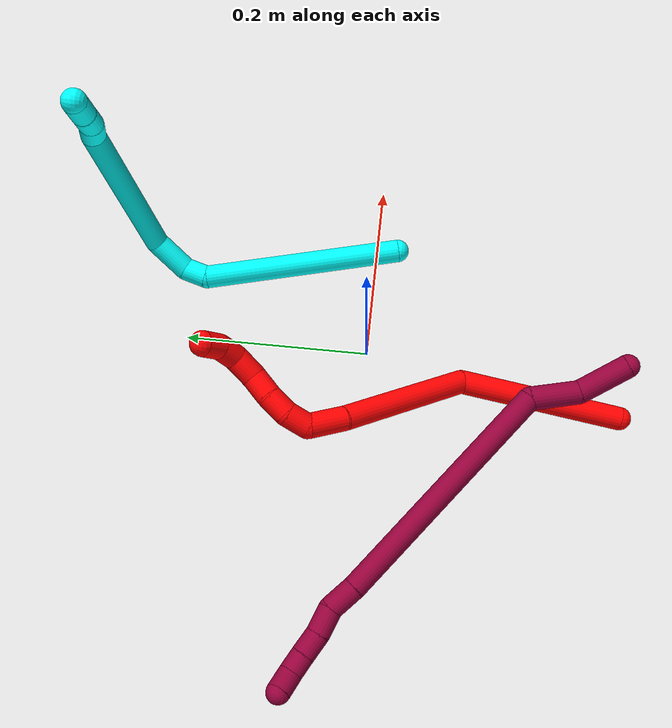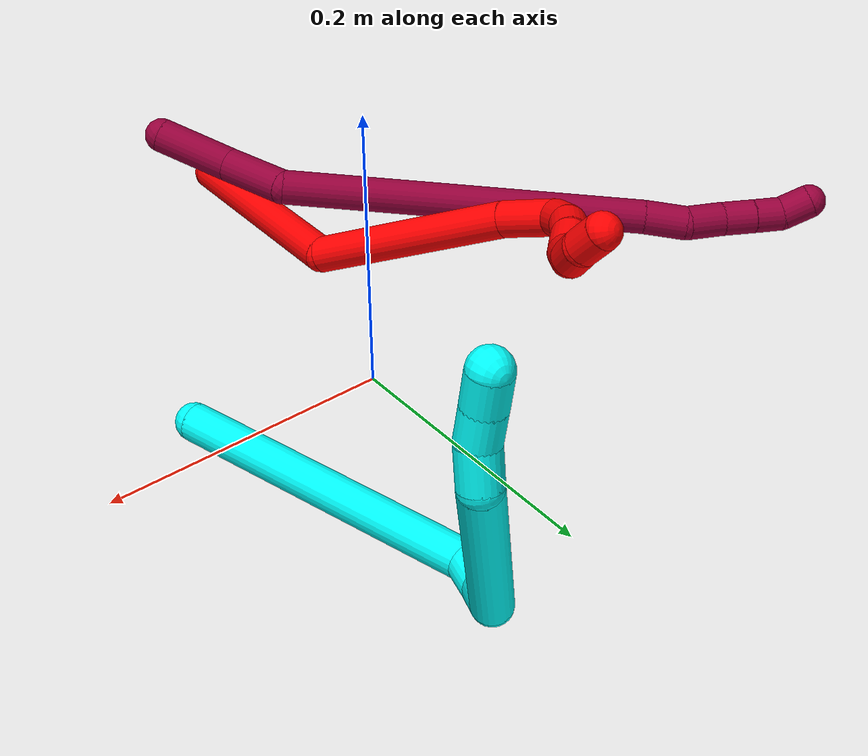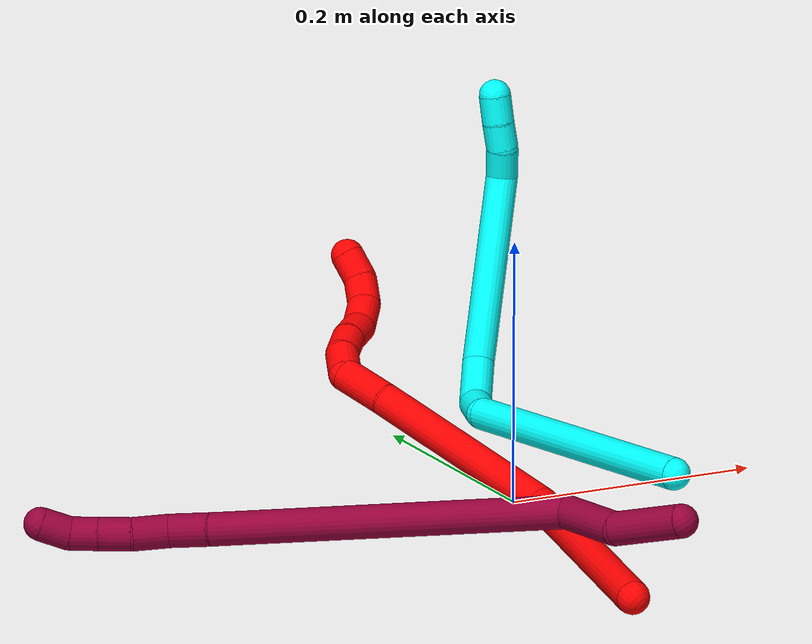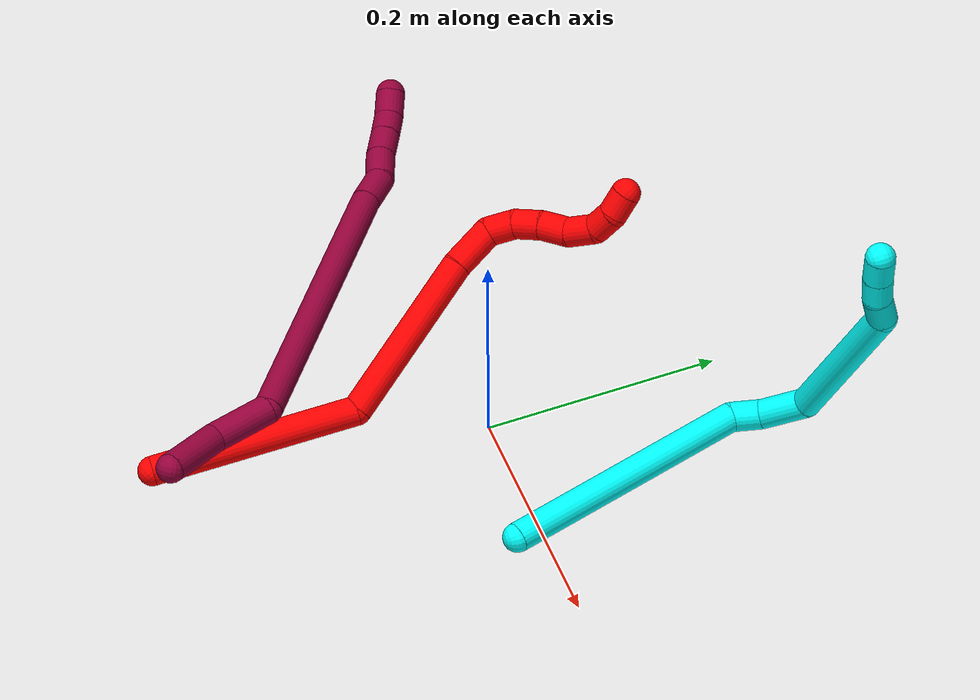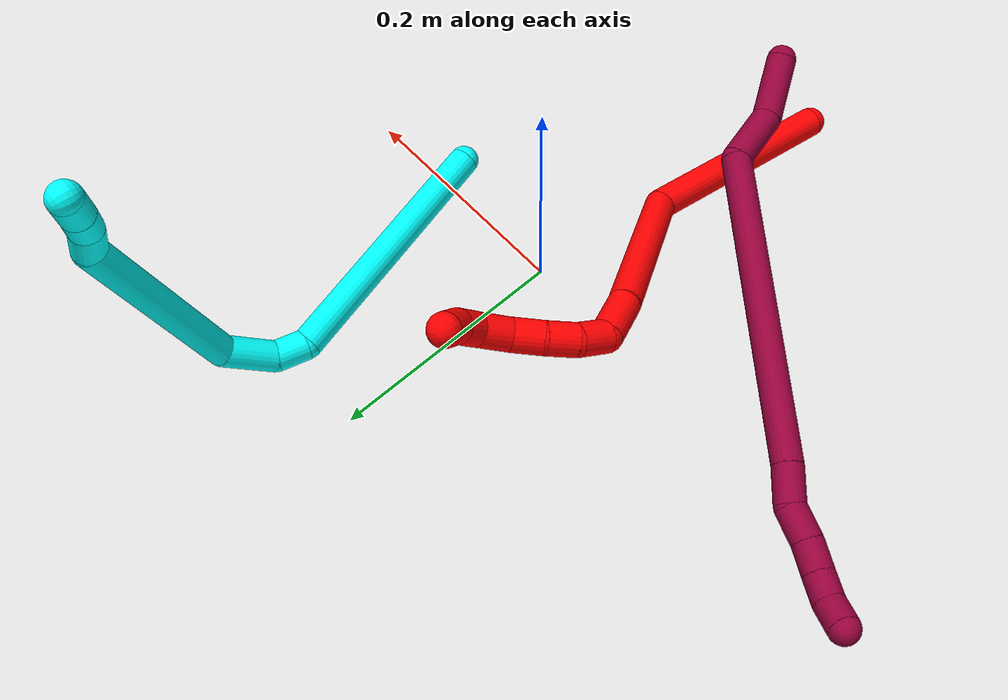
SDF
<sdf version="1.7">
 <world name="default">
  <model name="photoneo_s_sensor">
   <static>1</static>
   <pose>0 0 2 1.57079 1.57079 3.14159</pose>
   <link name="link">
    <inertial><mass>0.1</mass></inertial>
    <sensor name="sensor" type="depth">
     <update_rate>30</update_rate>
     <camera>
      <horizontal_fov>1.22</horizontal_fov>
      <image><width>1920</width><height>1200</height><format>B8G8R8</format></image>
      <clip><near>0.1</near><far>4</far></clip>
      <depth_camera><output>points</output></depth_camera>
     </camera>
     <plugin name="camera_plugin" filename="libgazebo_ros_depth_camera.so">
      <baseline>0.2</baseline>
      <alwaysOn>1</alwaysOn>
      <updateRate>0.0</updateRate>
      <cameraName>camera_ir</cameraName>
      <imageTopicName>/camera/color/image_raw</imageTopicName>
      <cameraInfoTopicName>/camera/color/camera_info</cameraInfoTopicName>
      <depthImageTopicName>/camera/depth/image_raw</depthImageTopicName>
      <depthImageCameraInfoTopicName>/camera/depth/camera_info</depthImageCameraInfoTopicName>
      <pointCloudTopicName>/camera/depth/points</pointCloudTopicName>
      <frameName>fr_optical</frameName>
      <pointCloudCutoff>0.1</pointCloudCutoff>
      <pointCloudCutoffMax>2.0</pointCloudCutoffMax>
      <distortionK1>0</distortionK1>
      <distortionK2>0</distortionK2>
      <distortionK3>0</distortionK3>
      <distortionT1>0</distortionT1>
      <distortionT2>0</distortionT2>
      <CxPrime>0</CxPrime>
      <Cx>0</Cx>
      <Cy>0</Cy>
      <focalLength>0</focalLength>
      <hackBaseline>0</hackBaseline>
     </plugin>
    </sensor>
   </link>
  </model>
  <model name="bin">
   <static>1</static>
   <link name="bottom">
    <collision name="collision-bottom">
     <pose>0 0 -0.01 0 -0 0</pose>
     <geometry><box><size>0.8 0.6 0.02</size></box></geometry>
     <surface>
      <friction><ode><mu>100</mu><mu2>100</mu2></ode></friction>
      <contact><collide_bitmask>65535</collide_bitmask></contact>
     </surface>
    </collision>
   </link>
   <link name="west_wall">
    <collision name="collision-west_wall">
     <pose>-0.41 0 0.1 0 -0 0</pose>
     <geometry><box><size>0.02 0.6 0.2</size></box></geometry>
     <surface>
      <friction><ode><mu>100</mu><mu2>100</mu2></ode></friction>
      <contact><collide_bitmask>65535</collide_bitmask></contact>
     </surface>
    </collision>
   </link>
   <link name="east_wall">
    <collision name="collision-east_wall">
     <pose>0.41 0 0.1 0 -0 0</pose>
     <geometry><box><size>0.02 0.6 0.2</size></box></geometry>
     <surface>
      <friction><ode><mu>100</mu><mu2>100</mu2></ode></friction>
      <contact><collide_bitmask>65535</collide_bitmask></contact>
     </surface>
    </collision>
   </link>
   <link name="south_wall">
    <collision name="collision-south_wall">
     <pose>0 -0.31 0.1 0 -0 0</pose>
     <geometry><box><size>0.8 0.02 0.2</size></box></geometry>
     <surface>
      <friction><ode><mu>100</mu><mu2>100</mu2></ode></friction>
      <contact><collide_bitmask>65535</collide_bitmask></contact>
     </surface>
    </collision>
   </link>
   <link name="north_wall">
    <collision name="collision-north_wall">
     <pose>0 0.31 0.1 0 -0 0</pose>
     <geometry><box><size>0.8 0.02 0.2</size></box></geometry>
     <surface>
      <friction><ode><mu>100</mu><mu2>100</mu2></ode></friction>
      <contact><collide_bitmask>65535</collide_bitmask></contact>
     </surface>
    </collision>
   </link>
  </model>
  <model name="2">
   <static>0</static>
   <link name="2">
    <collision name="collision-cylinder-e_1_1_4">
     <pose>0.028869 0.027358 0.077668 -0.338674 0.337193 -0.058188</pose>
     <geometry><cylinder><radius>0.0125</radius><length>0.174518</length></cylinder></geometry>
     <surface>
      <friction><ode><mu>1.16</mu><mu2>1.16</mu2><slip1>0</slip1><slip2>0</slip2></ode></friction>
      <contact><ode><kp>1e+06</kp><kd>1</kd><max_vel>0</max_vel><min_depth>0.001</min_depth></ode></contact>
     </surface>
    </collision>
    <visual name="visual-cylinder-e_1_1_4">
     <pose>0.028869 0.027358 0.077668 -0.338674 0.337193 -0.058188</pose>
     <geometry><cylinder><radius>0.0125</radius><length>0.174518</length></cylinder></geometry>
     <material><ambient>1 0 0 1</ambient></material>
    </visual>
    <collision name="collision-cylinder-e_2_4_5">
     <pose>0.038917 0.054653 0.226309 0.000888 -0.259213 -0.000116</pose>
     <geometry><cylinder><radius>0.0125</radius><length>0.146853</length></cylinder></geometry>
     <surface>
      <friction><ode><mu>1.16</mu><mu2>1.16</mu2><slip1>0</slip1><slip2>0</slip2></ode></friction>
      <contact><ode><kp>1e+06</kp><kd>1</kd><max_vel>0</max_vel><min_depth>0.001</min_depth></ode></contact>
     </surface>
    </collision>
    <visual name="visual-cylinder-e_2_4_5">
     <pose>0.038917 0.054653 0.226309 0.000888 -0.259213 -0.000116</pose>
     <geometry><cylinder><radius>0.0125</radius><length>0.146853</length></cylinder></geometry>
     <material><ambient>1 0 0 1</ambient></material>
    </visual>
    <collision name="collision-cylinder-e_3_5_6">
     <pose>0.017045 0.056807 0.316459 -0.115073 -0.156733 0.009046</pose>
     <geometry><cylinder><radius>0.0125</radius><length>0.03909</length></cylinder></geometry>
     <surface>
      <friction><ode><mu>1.16</mu><mu2>1.16</mu2><slip1>0</slip1><slip2>0</slip2></ode></friction>
      <contact><ode><kp>1e+06</kp><kd>1</kd><max_vel>0</max_vel><min_depth>0.001</min_depth></ode></contact>
     </surface>
    </collision>
    <visual name="visual-cylinder-e_3_5_6">
     <pose>0.017045 0.056807 0.316459 -0.115073 -0.156733 0.009046</pose>
     <geometry><cylinder><radius>0.0125</radius><length>0.03909</length></cylinder></geometry>
     <material><ambient>1 0 0 1</ambient></material>
    </visual>
    <collision name="collision-cylinder-e_4_6_7">
     <pose>0.020549 0.05922 0.345852 -0.019222 0.570369 -0.005636</pose>
     <geometry><cylinder><radius>0.0125</radius><length>0.024276</length></cylinder></geometry>
     <surface>
      <friction><ode><mu>1.16</mu><mu2>1.16</mu2><slip1>0</slip1><slip2>0</slip2></ode></friction>
      <contact><ode><kp>1e+06</kp><kd>1</kd><max_vel>0</max_vel><min_depth>0.001</min_depth></ode></contact>
     </surface>
    </collision>
    <visual name="visual-cylinder-e_4_6_7">
     <pose>0.020549 0.05922 0.345852 -0.019222 0.570369 -0.005636</pose>
     <geometry><cylinder><radius>0.0125</radius><length>0.024276</length></cylinder></geometry>
     <material><ambient>1 0 0 1</ambient></material>
    </visual>
    <collision name="collision-cylinder-e_5_7_8">
     <pose>0.036201 0.060372 0.36348 -0.12818 0.883091 -0.060651</pose>
     <geometry><cylinder><radius>0.0125</radius><length>0.023549</length></cylinder></geometry>
     <surface>
      <friction><ode><mu>1.16</mu><mu2>1.16</mu2><slip1>0</slip1><slip2>0</slip2></ode></friction>
      <contact><ode><kp>1e+06</kp><kd>1</kd><max_vel>0</max_vel><min_depth>0.001</min_depth></ode></contact>
     </surface>
    </collision>
    <visual name="visual-cylinder-e_5_7_8">
     <pose>0.036201 0.060372 0.36348 -0.12818 0.883091 -0.060651</pose>
     <geometry><cylinder><radius>0.0125</radius><length>0.023549</length></cylinder></geometry>
     <material><ambient>1 0 0 1</ambient></material>
    </visual>
    <collision name="collision-cylinder-e_6_8_9">
     <pose>0.055609 0.063396 0.376724 -0.340859 1.03025 -0.19424</pose>
     <geometry><cylinder><radius>0.0125</radius><length>0.024048</length></cylinder></geometry>
     <surface>
      <friction><ode><mu>1.16</mu><mu2>1.16</mu2><slip1>0</slip1><slip2>0</slip2></ode></friction>
      <contact><ode><kp>1e+06</kp><kd>1</kd><max_vel>0</max_vel><min_depth>0.001</min_depth></ode></contact>
     </surface>
    </collision>
    <visual name="visual-cylinder-e_6_8_9">
     <pose>0.055609 0.063396 0.376724 -0.340859 1.03025 -0.19424</pose>
     <geometry><cylinder><radius>0.0125</radius><length>0.024048</length></cylinder></geometry>
     <material><ambient>1 0 0 1</ambient></material>
    </visual>
    <collision name="collision-cylinder-e_7_9_10">
     <pose>0.075097 0.06404 0.391397 0.159668 0.797687 0.067407</pose>
     <geometry><cylinder><radius>0.0125</radius><length>0.025647</length></cylinder></geometry>
     <surface>
      <friction><ode><mu>1.16</mu><mu2>1.16</mu2><slip1>0</slip1><slip2>0</slip2></ode></friction>
      <contact><ode><kp>1e+06</kp><kd>1</kd><max_vel>0</max_vel><min_depth>0.001</min_depth></ode></contact>
     </surface>
    </collision>
    <visual name="visual-cylinder-e_7_9_10">
     <pose>0.075097 0.06404 0.391397 0.159668 0.797687 0.067407</pose>
     <geometry><cylinder><radius>0.0125</radius><length>0.025647</length></cylinder></geometry>
     <material><ambient>1 0 0 1</ambient></material>
    </visual>
    <collision name="collision-cylinder-e_8_10_11">
     <pose>0.087907 0.058165 0.409069 0.466917 0.351978 0.084523</pose>
     <geometry><cylinder><radius>0.0125</radius><length>0.02107</length></cylinder></geometry>
     <surface>
      <friction><ode><mu>1.16</mu><mu2>1.16</mu2><slip1>0</slip1><slip2>0</slip2></ode></friction>
      <contact><ode><kp>1e+06</kp><kd>1</kd><max_vel>0</max_vel><min_depth>0.001</min_depth></ode></contact>
     </surface>
    </collision>
    <visual name="visual-cylinder-e_8_10_11">
     <pose>0.087907 0.058165 0.409069 0.466917 0.351978 0.084523</pose>
     <geometry><cylinder><radius>0.0125</radius><length>0.02107</length></cylinder></geometry>
     <material><ambient>1 0 0 1</ambient></material>
    </visual>
    <collision name="collision-cylinder-e_9_11_2">
     <pose>0.09148 0.049446 0.427465 0.419617 -0.005661 -0.001206</pose>
     <geometry><cylinder><radius>0.0125</radius><length>0.020949</length></cylinder></geometry>
     <surface>
      <friction><ode><mu>1.16</mu><mu2>1.16</mu2><slip1>0</slip1><slip2>0</slip2></ode></friction>
      <contact><ode><kp>1e+06</kp><kd>1</kd><max_vel>0</max_vel><min_depth>0.001</min_depth></ode></contact>
     </surface>
    </collision>
    <visual name="visual-cylinder-e_9_11_2">
     <pose>0.09148 0.049446 0.427465 0.419617 -0.005661 -0.001206</pose>
     <geometry><cylinder><radius>0.0125</radius><length>0.020949</length></cylinder></geometry>
     <material><ambient>1 0 0 1</ambient></material>
    </visual>
    <collision name="collision-sphere-2">
     <pose>0.09142 0.045179 0.437031 0 -0 0</pose>
     <geometry><sphere><radius>0.0125</radius></sphere></geometry>
     <surface>
      <friction><ode><mu>1.16</mu><mu2>1.16</mu2><slip1>0</slip1><slip2>0</slip2></ode></friction>
      <contact><ode><kp>1e+06</kp><kd>1</kd><max_vel>0</max_vel><min_depth>0.001</min_depth></ode></contact>
     </surface>
    </collision>
    <visual name="visual-sphere-2">
     <pose>0.09142 0.045179 0.437031 0 -0 0</pose>
     <geometry><sphere><radius>0.0125</radius></sphere></geometry>
     <material><ambient>1 0 0 1</ambient></material>
    </visual>
    <collision name="collision-sphere-11">
     <pose>0.091539 0.053714 0.4179 0 -0 0</pose>
     <geometry><sphere><radius>0.0125</radius></sphere></geometry>
     <surface>
      <friction><ode><mu>1.16</mu><mu2>1.16</mu2><slip1>0</slip1><slip2>0</slip2></ode></friction>
      <contact><ode><kp>1e+06</kp><kd>1</kd><max_vel>0</max_vel><min_depth>0.001</min_depth></ode></contact>
     </surface>
    </collision>
    <visual name="visual-sphere-11">
     <pose>0.091539 0.053714 0.4179 0 -0 0</pose>
     <geometry><sphere><radius>0.0125</radius></sphere></geometry>
     <material><ambient>1 0 0 1</ambient></material>
    </visual>
    <collision name="collision-sphere-10">
     <pose>0.084275 0.062616 0.400239 0 -0 0</pose>
     <geometry><sphere><radius>0.0125</radius></sphere></geometry>
     <surface>
      <friction><ode><mu>1.16</mu><mu2>1.16</mu2><slip1>0</slip1><slip2>0</slip2></ode></friction>
      <contact><ode><kp>1e+06</kp><kd>1</kd><max_vel>0</max_vel><min_depth>0.001</min_depth></ode></contact>
     </surface>
    </collision>
    <visual name="visual-sphere-10">
     <pose>0.084275 0.062616 0.400239 0 -0 0</pose>
     <geometry><sphere><radius>0.0125</radius></sphere></geometry>
     <material><ambient>1 0 0 1</ambient></material>
    </visual>
    <collision name="collision-sphere-9">
     <pose>0.065919 0.065464 0.382556 0 -0 0</pose>
     <geometry><sphere><radius>0.0125</radius></sphere></geometry>
     <surface>
      <friction><ode><mu>1.16</mu><mu2>1.16</mu2><slip1>0</slip1><slip2>0</slip2></ode></friction>
      <contact><ode><kp>1e+06</kp><kd>1</kd><max_vel>0</max_vel><min_depth>0.001</min_depth></ode></contact>
     </surface>
    </collision>
    <visual name="visual-sphere-9">
     <pose>0.065919 0.065464 0.382556 0 -0 0</pose>
     <geometry><sphere><radius>0.0125</radius></sphere></geometry>
     <material><ambient>1 0 0 1</ambient></material>
    </visual>
    <collision name="collision-sphere-4">
     <pose>0.057737 0.054716 0.155335 0 -0 0</pose>
     <geometry><sphere><radius>0.0125</radius></sphere></geometry>
     <surface>
      <friction><ode><mu>1.16</mu><mu2>1.16</mu2><slip1>0</slip1><slip2>0</slip2></ode></friction>
      <contact><ode><kp>1e+06</kp><kd>1</kd><max_vel>0</max_vel><min_depth>0.001</min_depth></ode></contact>
     </surface>
    </collision>
    <visual name="visual-sphere-4">
     <pose>0.057737 0.054716 0.155335 0 -0 0</pose>
     <geometry><sphere><radius>0.0125</radius></sphere></geometry>
     <material><ambient>1 0 0 1</ambient></material>
    </visual>
    <collision name="collision-sphere-1">
     <geometry><sphere><radius>0.0125</radius></sphere></geometry>
     <surface>
      <friction><ode><mu>1.16</mu><mu2>1.16</mu2><slip1>0</slip1><slip2>0</slip2></ode></friction>
      <contact><ode><kp>1e+06</kp><kd>1</kd><max_vel>0</max_vel><min_depth>0.001</min_depth></ode></contact>
     </surface>
    </collision>
    <visual name="visual-sphere-1">
     <geometry><sphere><radius>0.0125</radius></sphere></geometry>
     <material><ambient>1 0 0 1</ambient></material>
    </visual>
    <collision name="collision-sphere-8">
     <pose>0.045299 0.061327 0.370892 0 -0 0</pose>
     <geometry><sphere><radius>0.0125</radius></sphere></geometry>
     <surface>
      <friction><ode><mu>1.16</mu><mu2>1.16</mu2><slip1>0</slip1><slip2>0</slip2></ode></friction>
      <contact><ode><kp>1e+06</kp><kd>1</kd><max_vel>0</max_vel><min_depth>0.001</min_depth></ode></contact>
     </surface>
    </collision>
    <visual name="visual-sphere-8">
     <pose>0.045299 0.061327 0.370892 0 -0 0</pose>
     <geometry><sphere><radius>0.0125</radius></sphere></geometry>
     <material><ambient>1 0 0 1</ambient></material>
    </visual>
    <collision name="collision-sphere-5">
     <pose>0.020096 0.05459 0.297282 0 -0 0</pose>
     <geometry><sphere><radius>0.0125</radius></sphere></geometry>
     <surface>
      <friction><ode><mu>1.16</mu><mu2>1.16</mu2><slip1>0</slip1><slip2>0</slip2></ode></friction>
      <contact><ode><kp>1e+06</kp><kd>1</kd><max_vel>0</max_vel><min_depth>0.001</min_depth></ode></contact>
     </surface>
    </collision>
    <visual name="visual-sphere-5">
     <pose>0.020096 0.05459 0.297282 0 -0 0</pose>
     <geometry><sphere><radius>0.0125</radius></sphere></geometry>
     <material><ambient>1 0 0 1</ambient></material>
    </visual>
    <collision name="collision-sphere-6">
     <pose>0.013995 0.059023 0.335637 0 -0 0</pose>
     <geometry><sphere><radius>0.0125</radius></sphere></geometry>
     <surface>
      <friction><ode><mu>1.16</mu><mu2>1.16</mu2><slip1>0</slip1><slip2>0</slip2></ode></friction>
      <contact><ode><kp>1e+06</kp><kd>1</kd><max_vel>0</max_vel><min_depth>0.001</min_depth></ode></contact>
     </surface>
    </collision>
    <visual name="visual-sphere-6">
     <pose>0.013995 0.059023 0.335637 0 -0 0</pose>
     <geometry><sphere><radius>0.0125</radius></sphere></geometry>
     <material><ambient>1 0 0 1</ambient></material>
    </visual>
    <collision name="collision-sphere-7">
     <pose>0.027102 0.059416 0.356067 0 -0 0</pose>
     <geometry><sphere><radius>0.0125</radius></sphere></geometry>
     <surface>
      <friction><ode><mu>1.16</mu><mu2>1.16</mu2><slip1>0</slip1><slip2>0</slip2></ode></friction>
      <contact><ode><kp>1e+06</kp><kd>1</kd><max_vel>0</max_vel><min_depth>0.001</min_depth></ode></contact>
     </surface>
    </collision>
    <visual name="visual-sphere-7">
     <pose>0.027102 0.059416 0.356067 0 -0 0</pose>
     <geometry><sphere><radius>0.0125</radius></sphere></geometry>
     <material><ambient>1 0 0 1</ambient></material>
    </visual>
    <inertial>
     <pose>0.039605 0.046617 0.225572 0 -0 0</pose>
     <mass>0.5</mass>
     <inertia>
      <ixx>0.000682</ixx>
      <ixy>0</ixy>
      <ixz>0</ixz>
      <iyy>0.000693</iyy>
      <iyz>0</iyz>
      <izz>-0.000192</izz>
     </inertia>
    </inertial>
   </link>
   <pose>-0.049353 -0.275858 0.011091 -1.12666 -0.06479 0.233169</pose>
  </model>
  <model name="3">
   <static>0</static>
   <link name="3">
    <collision name="collision-cylinder-e_1_1_4">
     <pose>0.020358 0.022303 0.103838 -0.211576 0.18939 -0.02017</pose>
     <geometry><cylinder><radius>0.0125</radius><length>0.216279</length></cylinder></geometry>
     <surface>
      <friction><ode><mu>1.16</mu><mu2>1.16</mu2><slip1>0</slip1><slip2>0</slip2></ode></friction>
      <contact><ode><kp>1e+06</kp><kd>1</kd><max_vel>0</max_vel><min_depth>0.001</min_depth></ode></contact>
     </surface>
    </collision>
    <visual name="visual-cylinder-e_1_1_4">
     <pose>0.020358 0.022303 0.103838 -0.211576 0.18939 -0.02017</pose>
     <geometry><cylinder><radius>0.0125</radius><length>0.216279</length></cylinder></geometry>
     <material><ambient>0.003922 1 0.996078 1</ambient></material>
    </visual>
    <collision name="collision-cylinder-e_2_4_5">
     <pose>0.03964 0.041516 0.220125 0.243319 -0.083707 -0.01024</pose>
     <geometry><cylinder><radius>0.0125</radius><length>0.025745</length></cylinder></geometry>
     <surface>
      <friction><ode><mu>1.16</mu><mu2>1.16</mu2><slip1>0</slip1><slip2>0</slip2></ode></friction>
      <contact><ode><kp>1e+06</kp><kd>1</kd><max_vel>0</max_vel><min_depth>0.001</min_depth></ode></contact>
     </surface>
    </collision>
    <visual name="visual-cylinder-e_2_4_5">
     <pose>0.03964 0.041516 0.220125 0.243319 -0.083707 -0.01024</pose>
     <geometry><cylinder><radius>0.0125</radius><length>0.025745</length></cylinder></geometry>
     <material><ambient>0.003922 1 0.996078 1</ambient></material>
    </visual>
    <collision name="collision-cylinder-e_3_5_6">
     <pose>0.02546 0.035316 0.249088 0.18614 -0.662295 -0.06416</pose>
     <geometry><cylinder><radius>0.0125</radius><length>0.042618</length></cylinder></geometry>
     <surface>
      <friction><ode><mu>1.16</mu><mu2>1.16</mu2><slip1>0</slip1><slip2>0</slip2></ode></friction>
      <contact><ode><kp>1e+06</kp><kd>1</kd><max_vel>0</max_vel><min_depth>0.001</min_depth></ode></contact>
     </surface>
    </collision>
    <visual name="visual-cylinder-e_3_5_6">
     <pose>0.02546 0.035316 0.249088 0.18614 -0.662295 -0.06416</pose>
     <geometry><cylinder><radius>0.0125</radius><length>0.042618</length></cylinder></geometry>
     <material><ambient>0.003922 1 0.996078 1</ambient></material>
    </visual>
    <collision name="collision-cylinder-e_4_6_7">
     <pose>-0.055598 0.045478 0.291872 -0.467828 -1.16207 0.310411</pose>
     <geometry><cylinder><radius>0.0125</radius><length>0.148109</length></cylinder></geometry>
     <surface>
      <friction><ode><mu>1.16</mu><mu2>1.16</mu2><slip1>0</slip1><slip2>0</slip2></ode></friction>
      <contact><ode><kp>1e+06</kp><kd>1</kd><max_vel>0</max_vel><min_depth>0.001</min_depth></ode></contact>
     </surface>
    </collision>
    <visual name="visual-cylinder-e_4_6_7">
     <pose>-0.055598 0.045478 0.291872 -0.467828 -1.16207 0.310411</pose>
     <geometry><cylinder><radius>0.0125</radius><length>0.148109</length></cylinder></geometry>
     <material><ambient>0.003922 1 0.996078 1</ambient></material>
    </visual>
    <collision name="collision-cylinder-e_5_7_8">
     <pose>-0.133737 0.065358 0.316663 -1.79097 -0.984138 1.17962</pose>
     <geometry><cylinder><radius>0.0125</radius><length>0.02446</length></cylinder></geometry>
     <surface>
      <friction><ode><mu>1.16</mu><mu2>1.16</mu2><slip1>0</slip1><slip2>0</slip2></ode></friction>
      <contact><ode><kp>1e+06</kp><kd>1</kd><max_vel>0</max_vel><min_depth>0.001</min_depth></ode></contact>
     </surface>
    </collision>
    <visual name="visual-cylinder-e_5_7_8">
     <pose>-0.133737 0.065358 0.316663 -1.79097 -0.984138 1.17962</pose>
     <geometry><cylinder><radius>0.0125</radius><length>0.02446</length></cylinder></geometry>
     <material><ambient>0.003922 1 0.996078 1</ambient></material>
    </visual>
    <collision name="collision-cylinder-e_6_8_9">
     <pose>-0.152183 0.078312 0.316257 -1.40334 -0.90883 0.783096</pose>
     <geometry><cylinder><radius>0.0125</radius><length>0.020945</length></cylinder></geometry>
     <surface>
      <friction><ode><mu>1.16</mu><mu2>1.16</mu2><slip1>0</slip1><slip2>0</slip2></ode></friction>
      <contact><ode><kp>1e+06</kp><kd>1</kd><max_vel>0</max_vel><min_depth>0.001</min_depth></ode></contact>
     </surface>
    </collision>
    <visual name="visual-cylinder-e_6_8_9">
     <pose>-0.152183 0.078312 0.316257 -1.40334 -0.90883 0.783096</pose>
     <geometry><cylinder><radius>0.0125</radius><length>0.020945</length></cylinder></geometry>
     <material><ambient>0.003922 1 0.996078 1</ambient></material>
    </visual>
    <collision name="collision-cylinder-e_7_9_2">
     <pose>-0.169403 0.090667 0.319036 -1.29417 -0.962047 0.751277</pose>
     <geometry><cylinder><radius>0.0125</radius><length>0.021844</length></cylinder></geometry>
     <surface>
      <friction><ode><mu>1.16</mu><mu2>1.16</mu2><slip1>0</slip1><slip2>0</slip2></ode></friction>
      <contact><ode><kp>1e+06</kp><kd>1</kd><max_vel>0</max_vel><min_depth>0.001</min_depth></ode></contact>
     </surface>
    </collision>
    <visual name="visual-cylinder-e_7_9_2">
     <pose>-0.169403 0.090667 0.319036 -1.29417 -0.962047 0.751277</pose>
     <geometry><cylinder><radius>0.0125</radius><length>0.021844</length></cylinder></geometry>
     <material><ambient>0.003922 1 0.996078 1</ambient></material>
    </visual>
    <collision name="collision-sphere-2">
     <pose>-0.178363 0.096675 0.320741 0 -0 0</pose>
     <geometry><sphere><radius>0.0125</radius></sphere></geometry>
     <surface>
      <friction><ode><mu>1.16</mu><mu2>1.16</mu2><slip1>0</slip1><slip2>0</slip2></ode></friction>
      <contact><ode><kp>1e+06</kp><kd>1</kd><max_vel>0</max_vel><min_depth>0.001</min_depth></ode></contact>
     </surface>
    </collision>
    <visual name="visual-sphere-2">
     <pose>-0.178363 0.096675 0.320741 0 -0 0</pose>
     <geometry><sphere><radius>0.0125</radius></sphere></geometry>
     <material><ambient>0.003922 1 0.996078 1</ambient></material>
    </visual>
    <collision name="collision-sphere-9">
     <pose>-0.160444 0.084659 0.31733 0 -0 0</pose>
     <geometry><sphere><radius>0.0125</radius></sphere></geometry>
     <surface>
      <friction><ode><mu>1.16</mu><mu2>1.16</mu2><slip1>0</slip1><slip2>0</slip2></ode></friction>
      <contact><ode><kp>1e+06</kp><kd>1</kd><max_vel>0</max_vel><min_depth>0.001</min_depth></ode></contact>
     </surface>
    </collision>
    <visual name="visual-sphere-9">
     <pose>-0.160444 0.084659 0.31733 0 -0 0</pose>
     <geometry><sphere><radius>0.0125</radius></sphere></geometry>
     <material><ambient>0.003922 1 0.996078 1</ambient></material>
    </visual>
    <collision name="collision-sphere-4">
     <pose>0.040717 0.044607 0.207675 0 -0 0</pose>
     <geometry><sphere><radius>0.0125</radius></sphere></geometry>
     <surface>
      <friction><ode><mu>1.16</mu><mu2>1.16</mu2><slip1>0</slip1><slip2>0</slip2></ode></friction>
      <contact><ode><kp>1e+06</kp><kd>1</kd><max_vel>0</max_vel><min_depth>0.001</min_depth></ode></contact>
     </surface>
    </collision>
    <visual name="visual-sphere-4">
     <pose>0.040717 0.044607 0.207675 0 -0 0</pose>
     <geometry><sphere><radius>0.0125</radius></sphere></geometry>
     <material><ambient>0.003922 1 0.996078 1</ambient></material>
    </visual>
    <collision name="collision-sphere-1">
     <geometry><sphere><radius>0.0125</radius></sphere></geometry>
     <surface>
      <friction><ode><mu>1.16</mu><mu2>1.16</mu2><slip1>0</slip1><slip2>0</slip2></ode></friction>
      <contact><ode><kp>1e+06</kp><kd>1</kd><max_vel>0</max_vel><min_depth>0.001</min_depth></ode></contact>
     </surface>
    </collision>
    <visual name="visual-sphere-1">
     <geometry><sphere><radius>0.0125</radius></sphere></geometry>
     <material><ambient>0.003922 1 0.996078 1</ambient></material>
    </visual>
    <collision name="collision-sphere-8">
     <pose>-0.143923 0.071965 0.315184 0 -0 0</pose>
     <geometry><sphere><radius>0.0125</radius></sphere></geometry>
     <surface>
      <friction><ode><mu>1.16</mu><mu2>1.16</mu2><slip1>0</slip1><slip2>0</slip2></ode></friction>
      <contact><ode><kp>1e+06</kp><kd>1</kd><max_vel>0</max_vel><min_depth>0.001</min_depth></ode></contact>
     </surface>
    </collision>
    <visual name="visual-sphere-8">
     <pose>-0.143923 0.071965 0.315184 0 -0 0</pose>
     <geometry><sphere><radius>0.0125</radius></sphere></geometry>
     <material><ambient>0.003922 1 0.996078 1</ambient></material>
    </visual>
    <collision name="collision-sphere-5">
     <pose>0.038564 0.038426 0.232574 0 -0 0</pose>
     <geometry><sphere><radius>0.0125</radius></sphere></geometry>
     <surface>
      <friction><ode><mu>1.16</mu><mu2>1.16</mu2><slip1>0</slip1><slip2>0</slip2></ode></friction>
      <contact><ode><kp>1e+06</kp><kd>1</kd><max_vel>0</max_vel><min_depth>0.001</min_depth></ode></contact>
     </surface>
    </collision>
    <visual name="visual-sphere-5">
     <pose>0.038564 0.038426 0.232574 0 -0 0</pose>
     <geometry><sphere><radius>0.0125</radius></sphere></geometry>
     <material><ambient>0.003922 1 0.996078 1</ambient></material>
    </visual>
    <collision name="collision-sphere-6">
     <pose>0.012357 0.032206 0.265602 0 -0 0</pose>
     <geometry><sphere><radius>0.0125</radius></sphere></geometry>
     <surface>
      <friction><ode><mu>1.16</mu><mu2>1.16</mu2><slip1>0</slip1><slip2>0</slip2></ode></friction>
      <contact><ode><kp>1e+06</kp><kd>1</kd><max_vel>0</max_vel><min_depth>0.001</min_depth></ode></contact>
     </surface>
    </collision>
    <visual name="visual-sphere-6">
     <pose>0.012357 0.032206 0.265602 0 -0 0</pose>
     <geometry><sphere><radius>0.0125</radius></sphere></geometry>
     <material><ambient>0.003922 1 0.996078 1</ambient></material>
    </visual>
    <collision name="collision-sphere-7">
     <pose>-0.123552 0.058751 0.318141 0 -0 0</pose>
     <geometry><sphere><radius>0.0125</radius></sphere></geometry>
     <surface>
      <friction><ode><mu>1.16</mu><mu2>1.16</mu2><slip1>0</slip1><slip2>0</slip2></ode></friction>
      <contact><ode><kp>1e+06</kp><kd>1</kd><max_vel>0</max_vel><min_depth>0.001</min_depth></ode></contact>
     </surface>
    </collision>
    <visual name="visual-sphere-7">
     <pose>-0.123552 0.058751 0.318141 0 -0 0</pose>
     <geometry><sphere><radius>0.0125</radius></sphere></geometry>
     <material><ambient>0.003922 1 0.996078 1</ambient></material>
    </visual>
    <inertial>
     <pose>-0.02377 0.038706 0.206616 0 -0 0</pose>
     <mass>0.5</mass>
     <inertia>
      <ixx>0.000956</ixx>
      <ixy>0</ixy>
      <ixz>0</ixz>
      <iyy>0.001143</iyy>
      <iyz>0</iyz>
      <izz>-9.8e-05</izz>
     </inertia>
    </inertial>
   </link>
   <pose>0.123806 -0.02278 0.011529 1.42358 1.0715 2.98817</pose>
  </model>
  <model name="8">
   <static>0</static>
   <link name="8">
    <collision name="collision-cylinder-e_1_1_4">
     <pose>-0.00755 0.025657 0.008272 -1.2589 -0.273053 0.199438</pose>
     <geometry><cylinder><radius>0.0125</radius><length>0.05599</length></cylinder></geometry>
     <surface>
      <friction><ode><mu>1.16</mu><mu2>1.16</mu2><slip1>0</slip1><slip2>0</slip2></ode></friction>
      <contact><ode><kp>1e+06</kp><kd>1</kd><max_vel>0</max_vel><min_depth>0.001</min_depth></ode></contact>
     </surface>
    </collision>
    <visual name="visual-cylinder-e_1_1_4">
     <pose>-0.00755 0.025657 0.008272 -1.2589 -0.273053 0.199438</pose>
     <geometry><cylinder><radius>0.0125</radius><length>0.05599</length></cylinder></geometry>
     <material><ambient>0.584314 0 0.227451 1</ambient></material>
    </visual>
    <collision name="collision-cylinder-e_2_4_5">
     <pose>-0.012498 0.074459 0.028643 -1.08912 0.099277 -0.060158</pose>
     <geometry><cylinder><radius>0.0125</radius><length>0.05249</length></cylinder></geometry>
     <surface>
      <friction><ode><mu>1.16</mu><mu2>1.16</mu2><slip1>0</slip1><slip2>0</slip2></ode></friction>
      <contact><ode><kp>1e+06</kp><kd>1</kd><max_vel>0</max_vel><min_depth>0.001</min_depth></ode></contact>
     </surface>
    </collision>
    <visual name="visual-cylinder-e_2_4_5">
     <pose>-0.012498 0.074459 0.028643 -1.08912 0.099277 -0.060158</pose>
     <geometry><cylinder><radius>0.0125</radius><length>0.05249</length></cylinder></geometry>
     <material><ambient>0.584314 0 0.227451 1</ambient></material>
    </visual>
    <collision name="collision-cylinder-e_3_5_6">
     <pose>-0.081467 0.190209 0.10175 -0.988261 -0.573133 0.314861</pose>
     <geometry><cylinder><radius>0.0125</radius><length>0.26397</length></cylinder></geometry>
     <surface>
      <friction><ode><mu>1.16</mu><mu2>1.16</mu2><slip1>0</slip1><slip2>0</slip2></ode></friction>
      <contact><ode><kp>1e+06</kp><kd>1</kd><max_vel>0</max_vel><min_depth>0.001</min_depth></ode></contact>
     </surface>
    </collision>
    <visual name="visual-cylinder-e_3_5_6">
     <pose>-0.081467 0.190209 0.10175 -0.988261 -0.573133 0.314861</pose>
     <geometry><cylinder><radius>0.0125</radius><length>0.26397</length></cylinder></geometry>
     <material><ambient>0.584314 0 0.227451 1</ambient></material>
    </visual>
    <collision name="collision-cylinder-e_4_6_7">
     <pose>-0.160352 0.294856 0.169844 -1.0389 -0.48221 0.279382</pose>
     <geometry><cylinder><radius>0.0125</radius><length>0.031543</length></cylinder></geometry>
     <surface>
      <friction><ode><mu>1.16</mu><mu2>1.16</mu2><slip1>0</slip1><slip2>0</slip2></ode></friction>
      <contact><ode><kp>1e+06</kp><kd>1</kd><max_vel>0</max_vel><min_depth>0.001</min_depth></ode></contact>
     </surface>
    </collision>
    <visual name="visual-cylinder-e_4_6_7">
     <pose>-0.160352 0.294856 0.169844 -1.0389 -0.48221 0.279382</pose>
     <geometry><cylinder><radius>0.0125</radius><length>0.031543</length></cylinder></geometry>
     <material><ambient>0.584314 0 0.227451 1</ambient></material>
    </visual>
    <collision name="collision-cylinder-e_5_7_8">
     <pose>-0.178019 0.313683 0.183536 -0.79877 -0.829947 0.367691</pose>
     <geometry><cylinder><radius>0.0125</radius><length>0.028059</length></cylinder></geometry>
     <surface>
      <friction><ode><mu>1.16</mu><mu2>1.16</mu2><slip1>0</slip1><slip2>0</slip2></ode></friction>
      <contact><ode><kp>1e+06</kp><kd>1</kd><max_vel>0</max_vel><min_depth>0.001</min_depth></ode></contact>
     </surface>
    </collision>
    <visual name="visual-cylinder-e_5_7_8">
     <pose>-0.178019 0.313683 0.183536 -0.79877 -0.829947 0.367691</pose>
     <geometry><cylinder><radius>0.0125</radius><length>0.028059</length></cylinder></geometry>
     <material><ambient>0.584314 0 0.227451 1</ambient></material>
    </visual>
    <collision name="collision-cylinder-e_6_8_9">
     <pose>-0.195857 0.327365 0.196782 -0.804332 -0.663645 0.291047</pose>
     <geometry><cylinder><radius>0.0125</radius><length>0.024308</length></cylinder></geometry>
     <surface>
      <friction><ode><mu>1.16</mu><mu2>1.16</mu2><slip1>0</slip1><slip2>0</slip2></ode></friction>
      <contact><ode><kp>1e+06</kp><kd>1</kd><max_vel>0</max_vel><min_depth>0.001</min_depth></ode></contact>
     </surface>
    </collision>
    <visual name="visual-cylinder-e_6_8_9">
     <pose>-0.195857 0.327365 0.196782 -0.804332 -0.663645 0.291047</pose>
     <geometry><cylinder><radius>0.0125</radius><length>0.024308</length></cylinder></geometry>
     <material><ambient>0.584314 0 0.227451 1</ambient></material>
    </visual>
    <collision name="collision-cylinder-e_7_9_10">
     <pose>-0.209965 0.340085 0.209112 -0.797056 -0.682804 0.297014</pose>
     <geometry><cylinder><radius>0.0125</radius><length>0.020988</length></cylinder></geometry>
     <surface>
      <friction><ode><mu>1.16</mu><mu2>1.16</mu2><slip1>0</slip1><slip2>0</slip2></ode></friction>
      <contact><ode><kp>1e+06</kp><kd>1</kd><max_vel>0</max_vel><min_depth>0.001</min_depth></ode></contact>
     </surface>
    </collision>
    <visual name="visual-cylinder-e_7_9_10">
     <pose>-0.209965 0.340085 0.209112 -0.797056 -0.682804 0.297014</pose>
     <geometry><cylinder><radius>0.0125</radius><length>0.020988</length></cylinder></geometry>
     <material><ambient>0.584314 0 0.227451 1</ambient></material>
    </visual>
    <collision name="collision-cylinder-e_8_10_2">
     <pose>-0.222596 0.349579 0.223672 -0.392326 -0.559269 0.114004</pose>
     <geometry><cylinder><radius>0.0125</radius><length>0.022652</length></cylinder></geometry>
     <surface>
      <friction><ode><mu>1.16</mu><mu2>1.16</mu2><slip1>0</slip1><slip2>0</slip2></ode></friction>
      <contact><ode><kp>1e+06</kp><kd>1</kd><max_vel>0</max_vel><min_depth>0.001</min_depth></ode></contact>
     </surface>
    </collision>
    <visual name="visual-cylinder-e_8_10_2">
     <pose>-0.222596 0.349579 0.223672 -0.392326 -0.559269 0.114004</pose>
     <geometry><cylinder><radius>0.0125</radius><length>0.022652</length></cylinder></geometry>
     <material><ambient>0.584314 0 0.227451 1</ambient></material>
    </visual>
    <collision name="collision-sphere-2">
     <pose>-0.228605 0.35325 0.232543 0 -0 0</pose>
     <geometry><sphere><radius>0.0125</radius></sphere></geometry>
     <surface>
      <friction><ode><mu>1.16</mu><mu2>1.16</mu2><slip1>0</slip1><slip2>0</slip2></ode></friction>
      <contact><ode><kp>1e+06</kp><kd>1</kd><max_vel>0</max_vel><min_depth>0.001</min_depth></ode></contact>
     </surface>
    </collision>
    <visual name="visual-sphere-2">
     <pose>-0.228605 0.35325 0.232543 0 -0 0</pose>
     <geometry><sphere><radius>0.0125</radius></sphere></geometry>
     <material><ambient>0.584314 0 0.227451 1</ambient></material>
    </visual>
    <collision name="collision-sphere-10">
     <pose>-0.216587 0.345908 0.214801 0 -0 0</pose>
     <geometry><sphere><radius>0.0125</radius></sphere></geometry>
     <surface>
      <friction><ode><mu>1.16</mu><mu2>1.16</mu2><slip1>0</slip1><slip2>0</slip2></ode></friction>
      <contact><ode><kp>1e+06</kp><kd>1</kd><max_vel>0</max_vel><min_depth>0.001</min_depth></ode></contact>
     </surface>
    </collision>
    <visual name="visual-sphere-10">
     <pose>-0.216587 0.345908 0.214801 0 -0 0</pose>
     <geometry><sphere><radius>0.0125</radius></sphere></geometry>
     <material><ambient>0.584314 0 0.227451 1</ambient></material>
    </visual>
    <collision name="collision-sphere-9">
     <pose>-0.203344 0.334261 0.203423 0 -0 0</pose>
     <geometry><sphere><radius>0.0125</radius></sphere></geometry>
     <surface>
      <friction><ode><mu>1.16</mu><mu2>1.16</mu2><slip1>0</slip1><slip2>0</slip2></ode></friction>
      <contact><ode><kp>1e+06</kp><kd>1</kd><max_vel>0</max_vel><min_depth>0.001</min_depth></ode></contact>
     </surface>
    </collision>
    <visual name="visual-sphere-9">
     <pose>-0.203344 0.334261 0.203423 0 -0 0</pose>
     <geometry><sphere><radius>0.0125</radius></sphere></geometry>
     <material><ambient>0.584314 0 0.227451 1</ambient></material>
    </visual>
    <collision name="collision-sphere-4">
     <pose>-0.015099 0.051315 0.016545 0 -0 0</pose>
     <geometry><sphere><radius>0.0125</radius></sphere></geometry>
     <surface>
      <friction><ode><mu>1.16</mu><mu2>1.16</mu2><slip1>0</slip1><slip2>0</slip2></ode></friction>
      <contact><ode><kp>1e+06</kp><kd>1</kd><max_vel>0</max_vel><min_depth>0.001</min_depth></ode></contact>
     </surface>
    </collision>
    <visual name="visual-sphere-4">
     <pose>-0.015099 0.051315 0.016545 0 -0 0</pose>
     <geometry><sphere><radius>0.0125</radius></sphere></geometry>
     <material><ambient>0.584314 0 0.227451 1</ambient></material>
    </visual>
    <collision name="collision-sphere-1">
     <geometry><sphere><radius>0.0125</radius></sphere></geometry>
     <surface>
      <friction><ode><mu>1.16</mu><mu2>1.16</mu2><slip1>0</slip1><slip2>0</slip2></ode></friction>
      <contact><ode><kp>1e+06</kp><kd>1</kd><max_vel>0</max_vel><min_depth>0.001</min_depth></ode></contact>
     </surface>
    </collision>
    <visual name="visual-sphere-1">
     <geometry><sphere><radius>0.0125</radius></sphere></geometry>
     <material><ambient>0.584314 0 0.227451 1</ambient></material>
    </visual>
    <collision name="collision-sphere-8">
     <pose>-0.188371 0.320468 0.190141 0 -0 0</pose>
     <geometry><sphere><radius>0.0125</radius></sphere></geometry>
     <surface>
      <friction><ode><mu>1.16</mu><mu2>1.16</mu2><slip1>0</slip1><slip2>0</slip2></ode></friction>
      <contact><ode><kp>1e+06</kp><kd>1</kd><max_vel>0</max_vel><min_depth>0.001</min_depth></ode></contact>
     </surface>
    </collision>
    <visual name="visual-sphere-8">
     <pose>-0.188371 0.320468 0.190141 0 -0 0</pose>
     <geometry><sphere><radius>0.0125</radius></sphere></geometry>
     <material><ambient>0.584314 0 0.227451 1</ambient></material>
    </visual>
    <collision name="collision-sphere-5">
     <pose>-0.009896 0.097604 0.040742 0 -0 0</pose>
     <geometry><sphere><radius>0.0125</radius></sphere></geometry>
     <surface>
      <friction><ode><mu>1.16</mu><mu2>1.16</mu2><slip1>0</slip1><slip2>0</slip2></ode></friction>
      <contact><ode><kp>1e+06</kp><kd>1</kd><max_vel>0</max_vel><min_depth>0.001</min_depth></ode></contact>
     </surface>
    </collision>
    <visual name="visual-sphere-5">
     <pose>-0.009896 0.097604 0.040742 0 -0 0</pose>
     <geometry><sphere><radius>0.0125</radius></sphere></geometry>
     <material><ambient>0.584314 0 0.227451 1</ambient></material>
    </visual>
    <collision name="collision-sphere-6">
     <pose>-0.153038 0.282813 0.162757 0 -0 0</pose>
     <geometry><sphere><radius>0.0125</radius></sphere></geometry>
     <surface>
      <friction><ode><mu>1.16</mu><mu2>1.16</mu2><slip1>0</slip1><slip2>0</slip2></ode></friction>
      <contact><ode><kp>1e+06</kp><kd>1</kd><max_vel>0</max_vel><min_depth>0.001</min_depth></ode></contact>
     </surface>
    </collision>
    <visual name="visual-sphere-6">
     <pose>-0.153038 0.282813 0.162757 0 -0 0</pose>
     <geometry><sphere><radius>0.0125</radius></sphere></geometry>
     <material><ambient>0.584314 0 0.227451 1</ambient></material>
    </visual>
    <collision name="collision-sphere-7">
     <pose>-0.167666 0.306899 0.176931 0 -0 0</pose>
     <geometry><sphere><radius>0.0125</radius></sphere></geometry>
     <surface>
      <friction><ode><mu>1.16</mu><mu2>1.16</mu2><slip1>0</slip1><slip2>0</slip2></ode></friction>
      <contact><ode><kp>1e+06</kp><kd>1</kd><max_vel>0</max_vel><min_depth>0.001</min_depth></ode></contact>
     </surface>
    </collision>
    <visual name="visual-sphere-7">
     <pose>-0.167666 0.306899 0.176931 0 -0 0</pose>
     <geometry><sphere><radius>0.0125</radius></sphere></geometry>
     <material><ambient>0.584314 0 0.227451 1</ambient></material>
    </visual>
    <inertial>
     <pose>-0.093693 0.193341 0.107143 0 -0 0</pose>
     <mass>0.5</mass>
     <inertia>
      <ixx>0.001661</ixx>
      <ixy>0</ixy>
      <ixz>0</ixz>
      <iyy>0.00148</iyy>
      <iyz>0</iyz>
      <izz>-0.000252</izz>
     </inertia>
    </inertial>
   </link>
   <pose>-0.008189 -0.271676 0.060753 -0.503064 -0.322234 0.340931</pose>
  </model>
 </world>
</sdf>
